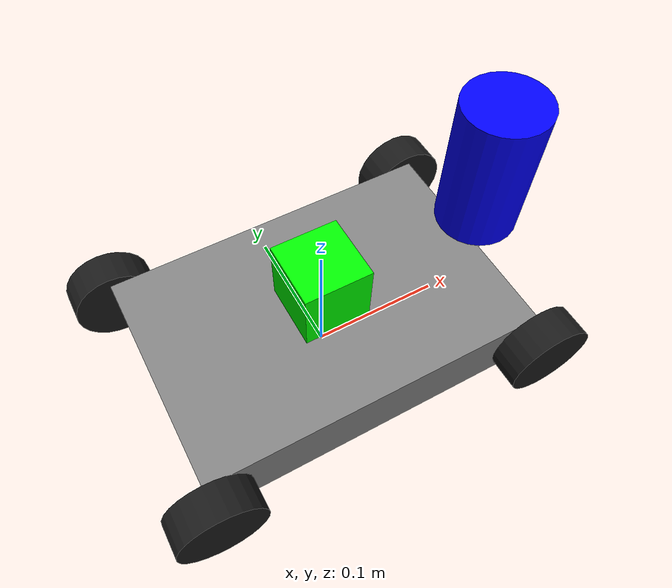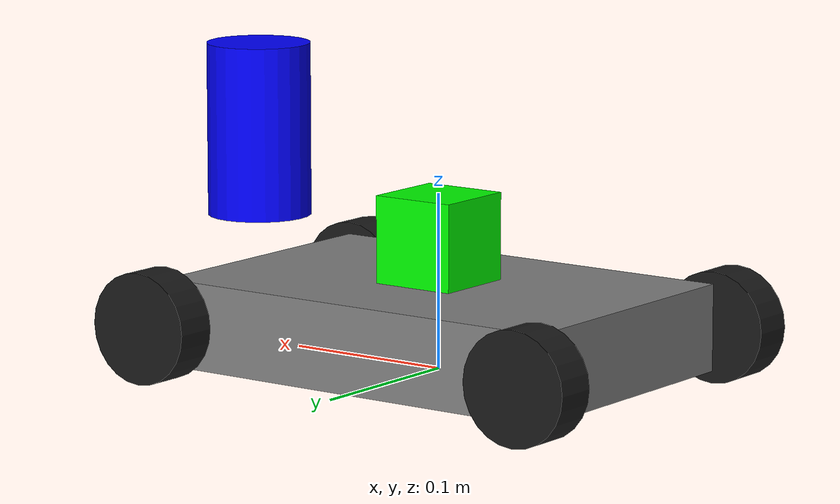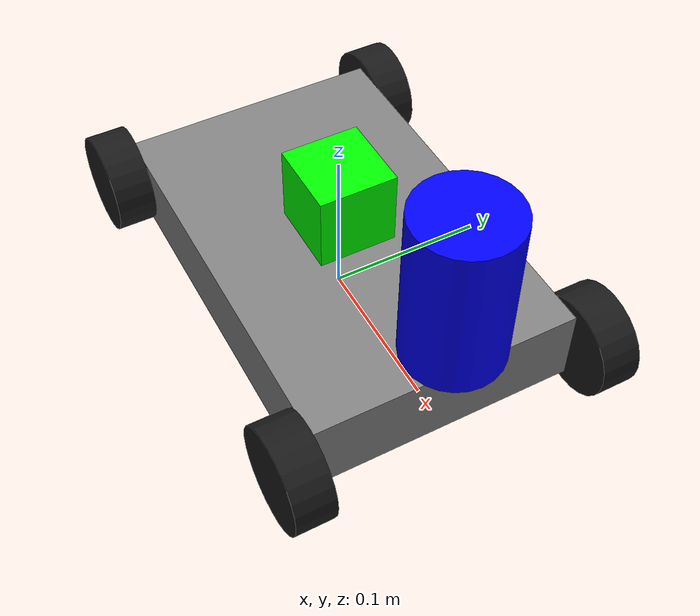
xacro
<?xml version="1.0"?>
<robot name="smartcar" xmlns:xacro="http://www.ros.org/wiki/xacro">

  <!-- Robot Parameters from first file -->
  <xacro:property name="wheel_diameter" value="0.064"/>
  <xacro:property name="wheel_width" value="0.025"/>
  <xacro:property name="wheelbase_length" value="0.257"/>
  <xacro:property name="wheelbase_width" value="0.17"/>

  <!-- Base Link -->
  <link name="base_link" />

  <!-- Chassis Link -->
  <link name="chassis_link">
    <visual>
      <geometry>
        <box size="${wheelbase_length} ${wheelbase_width} 0.05"/>
      </geometry>
      <material name="grey">
        <color rgba="0.5 0.5 0.5 1.0"/>
      </material>
    </visual>
    <collision>
      <geometry>
        <box size="${wheelbase_length} ${wheelbase_width} 0.05"/>
      </geometry>
    </collision>
    <inertial>
      <mass value="2.0"/>
      <origin xyz="0 0 0"/>
      <inertia ixx="0.1" ixy="0" ixz="0" iyy="0.2" iyz="0" izz="0.1"/>
    </inertial>
  </link>

  <joint name="base_to_chassis" type="fixed">
    <parent link="base_link"/>
    <child link="chassis_link"/>
    <origin xyz="0 0 0.025" rpy="0 0 0"/>
  </joint>

  <!-- IMU Link -->
  <link name="imu_link">
    <visual>
      <geometry>
        <box size="0.05 0.05 0.05"/>
      </geometry>
      <material name="green">
        <color rgba="0.0 1.0 0.0 1.0"/>
      </material>
    </visual>
    <inertial>
      <mass value="0.05"/>
      <origin xyz="0 0 0"/>
      <inertia ixx="0.001" ixy="0" ixz="0" iyy="0.001" iyz="0" izz="0.001"/>
    </inertial>
  </link>

  <joint name="imu_joint" type="fixed">
    <parent link="chassis_link"/>
    <child link="imu_link"/>
    <origin xyz="0 0 0.05" rpy="0 0 0"/>
  </joint>

  <!-- Wheel Links -->
  <!-- Back Left Wheel -->
  <link name="back_left_wheel_link">
    <visual>
      <geometry>
        <cylinder radius="${wheel_diameter/2}" length="${wheel_width}"/>
      </geometry>
      <material name="black">
        <color rgba="0.1 0.1 0.1 1.0"/>
      </material>
    </visual>
    <collision>
      <geometry>
        <cylinder radius="${wheel_diameter/2}" length="${wheel_width}"/>
      </geometry>
    </collision>
    <inertial>
      <mass value="0.3"/>
      <origin xyz="0 0 0"/>
      <inertia ixx="0.001" ixy="0" ixz="0" iyy="0.001" iyz="0" izz="0.001"/>
    </inertial>
  </link>

  <joint name="back_left_wheel_joint" type="continuous">
    <parent link="chassis_link"/>
    <child link="back_left_wheel_link"/>
    <origin xyz="-0.1285 ${wheelbase_width/2 + wheel_width/2} 0" rpy="-1.5708 0 0"/>
    <axis xyz="0 0 1"/>
    <limit effort="100" velocity="100"/>
  </joint>

  <!-- Back Right Wheel -->
  <link name="back_right_wheel_link">
    <visual>
      <geometry>
        <cylinder radius="${wheel_diameter/2}" length="${wheel_width}"/>
      </geometry>
      <material name="black">
        <color rgba="0.1 0.1 0.1 1.0"/>
      </material>
    </visual>
    <collision>
      <geometry>
        <cylinder radius="${wheel_diameter/2}" length="${wheel_width}"/>
      </geometry>
    </collision>
    <inertial>
      <mass value="0.3"/>
      <origin xyz="0 0 0"/>
      <inertia ixx="0.001" ixy="0" ixz="0" iyy="0.001" iyz="0" izz="0.001"/>
    </inertial>
  </link>

  <joint name="back_right_wheel_joint" type="continuous">
    <parent link="chassis_link"/>
    <child link="back_right_wheel_link"/>
    <origin xyz="-0.1285 -${wheelbase_width/2 + wheel_width/2} 0" rpy="-1.5708 0 0"/>
    <axis xyz="0 0 1"/>
    <limit effort="100" velocity="100"/>
  </joint>

  <!-- Front Wheels with Steering -->
  <!-- Front Left Wheel Mount -->
  <link name="front_left_wheel_mount">
    <inertial>
      <mass value="0.1"/>
      <origin xyz="0 0 0"/>
      <inertia ixx="0.001" ixy="0" ixz="0" iyy="0.001" iyz="0" izz="0.001"/>
    </inertial>
    <visual>
      <geometry>
        <sphere radius="0.01"/>
      </geometry>
    </visual>
    <collision>
      <geometry>
        <sphere radius="0.01"/>
      </geometry>
    </collision>
  </link>

  <joint name="front_left_wheel_steer_joint" type="revolute">
    <parent link="chassis_link"/>
    <child link="front_left_wheel_mount"/>
    <origin xyz="0.1285 ${wheelbase_width/2 + wheel_width/2} 0" rpy="0 0 0"/>
    <axis xyz="0 0 1"/>
    <limit lower="-0.5" upper="0.5" effort="100" velocity="100"/>
  </joint>

  <link name="front_left_wheel_link">
    <visual>
      <geometry>
        <cylinder radius="${wheel_diameter/2}" length="${wheel_width}"/>
      </geometry>
      <material name="black">
        <color rgba="0.1 0.1 0.1 1.0"/>
      </material>
    </visual>
    <collision>
      <geometry>
        <cylinder radius="${wheel_diameter/2}" length="${wheel_width}"/>
      </geometry>
    </collision>
    <inertial>
      <mass value="0.3"/>
      <origin xyz="0 0 0"/>
      <inertia ixx="0.001" ixy="0" ixz="0" iyy="0.001" iyz="0" izz="0.001"/>
    </inertial>
  </link>

  <joint name="front_left_wheel_joint" type="continuous">
    <parent link="front_left_wheel_mount"/>
    <child link="front_left_wheel_link"/>
    <origin xyz="0 0 0" rpy="-1.5708 0 0"/>
    <axis xyz="0 0 1"/>
    <limit effort="100" velocity="100"/>
  </joint>

  <!-- Front Right Wheel Mount -->
  <link name="front_right_wheel_mount">
    <inertial>
      <mass value="0.1"/>
      <origin xyz="0 0 0"/>
      <inertia ixx="0.001" ixy="0" ixz="0" iyy="0.001" iyz="0" izz="0.001"/>
    </inertial>
    <visual>
      <geometry>
        <sphere radius="0.01"/>
      </geometry>
    </visual>
    <collision>
      <geometry>
        <sphere radius="0.01"/>
      </geometry>
    </collision>
  </link>

  <joint name="front_right_wheel_steer_joint" type="revolute">
    <parent link="chassis_link"/>
    <child link="front_right_wheel_mount"/>
    <origin xyz="0.1285 -${wheelbase_width/2 + wheel_width/2} 0" rpy="0 0 0"/>
    <axis xyz="0 0 1"/>
    <limit lower="-0.5" upper="0.5" effort="100" velocity="100"/>
  </joint>

  <link name="front_right_wheel_link">
    <visual>
      <geometry>
        <cylinder radius="${wheel_diameter/2}" length="${wheel_width}"/>
      </geometry>
      <material name="black">
        <color rgba="0.1 0.1 0.1 1.0"/>
      </material>
    </visual>
    <collision>
      <geometry>
        <cylinder radius="${wheel_diameter/2}" length="${wheel_width}"/>
      </geometry>
    </collision>
    <inertial>
      <mass value="0.3"/>
      <origin xyz="0 0 0"/>
      <inertia ixx="0.001" ixy="0" ixz="0" iyy="0.001" iyz="0" izz="0.001"/>
    </inertial>
  </link>

  <joint name="front_right_wheel_joint" type="continuous">
    <parent link="front_right_wheel_mount"/>
    <child link="front_right_wheel_link"/>
    <origin xyz="0 0 0" rpy="-1.5708 0 0"/>
    <axis xyz="0 0 1"/>
    <limit effort="100" velocity="100"/>
  </joint>

  <!-- LIDAR Link -->
  <link name="sllidar_base_link">
    <visual>
      <geometry>
        <cylinder radius="0.03" length="0.1"/>
      </geometry>
      <material name="blue">
        <color rgba="0.0 0.0 1.0 1.0"/>
      </material>
    </visual>
    <inertial>
      <mass value="0.2"/>
      <origin xyz="0 0 0"/>
      <inertia ixx="0.002" ixy="0" ixz="0" iyy="0.002" iyz="0" izz="0.002"/>
    </inertial>
  </link>

  <joint name="lidar_joint" type="fixed">
    <parent link="chassis_link"/>
    <child link="sllidar_base_link"/>
    <origin xyz="0.1285 0 0.1" rpy="0 0 0"/>
  </joint>

  <!-- Gazebo plugins -->
  <gazebo>
    <plugin name="joint_state_publisher" filename="libgazebo_ros_joint_state_publisher.so">
      <robotNamespace>/</robotNamespace>
      <joint_name>back_right_wheel_joint</joint_name>
      <joint_name>back_left_wheel_joint</joint_name>
      <joint_name>front_right_wheel_joint</joint_name>
      <joint_name>front_left_wheel_joint</joint_name>
      <joint_name>front_right_wheel_steer_joint</joint_name>
      <joint_name>front_left_wheel_steer_joint</joint_name>
      <alwaysOn>true</alwaysOn>
      <updateRate>50</updateRate>
    </plugin>
  </gazebo>

  <gazebo>
    <plugin name="car_gazebo_plugin" filename="libcar_gazebo_plugin.so">
      <back_left_wheel_joint>back_left_wheel_joint</back_left_wheel_joint>
      <back_right_wheel_joint>back_right_wheel_joint</back_right_wheel_joint>
      <front_left_wheel_steer_joint>front_left_wheel_steer_joint</front_left_wheel_steer_joint>
      <front_left_wheel_joint>front_left_wheel_joint</front_left_wheel_joint>
      <front_right_wheel_steer_joint>front_right_wheel_steer_joint</front_right_wheel_steer_joint>
      <front_right_wheel_joint>front_right_wheel_joint</front_right_wheel_joint>
      <updateRate>50.0</updateRate>
    </plugin>
  </gazebo>

  <!-- LIDAR Plugin -->
  <gazebo reference="sllidar_base_link">
    <sensor type="ray" name="lidar_sensor">
      <pose>0 0 0 0 0 0</pose>
      <visualize>false</visualize>
      <update_rate>10</update_rate>
      <ray>
        <scan>
          <horizontal>
            <samples>360</samples>
            <min_angle>-3.14</min_angle>
            <max_angle>3.14</max_angle>
          </horizontal>
        </scan>
        <range>
          <min>0.3</min>
          <max>12</max>
          <resolution>0.001</resolution>
        </range>
      </ray>
      <plugin name="lidar_plugin" filename="libgazebo_ros_ray_sensor.so">
        <ros>
          <namespace>/</namespace>
          <remapping>~/out:=scan</remapping>
        </ros>
        <output_type>sensor_msgs/LaserScan</output_type>
        <frame_name>sllidar_base_link</frame_name>
      </plugin>
    </sensor>
  </gazebo>

  <!-- IMU Plugin -->
  <gazebo reference="imu_link">
    <sensor type="imu" name="imu_sensor">
      <always_on>true</always_on>
      <update_rate>30</update_rate>
      <plugin name="imu_plugin" filename="libgazebo_ros_imu_sensor.so">
        <ros>
          <namespace>/</namespace>
          <remapping>~/out:=imu_data</remapping>
        </ros>
      </plugin>
    </sensor>
  </gazebo>

</robot>
